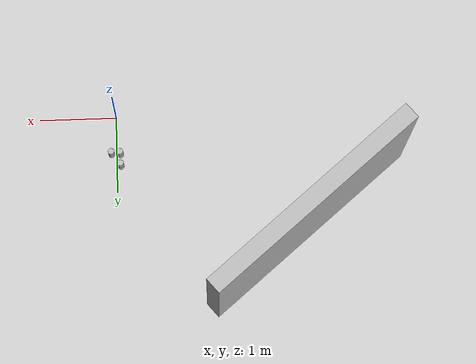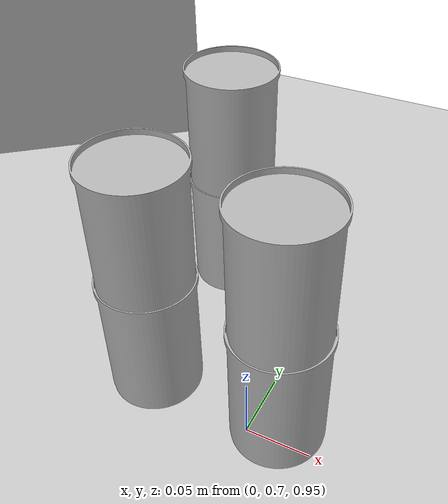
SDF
<sdf version="1.6">
 <world name="default">
  <model name="ground_plane">
   <static>1</static>
   <link name="link">
    <collision name="collision">
     <geometry><plane><normal>0 0 1</normal><size>100 100</size></plane></geometry>
     <surface>
      <contact><collide_bitmask>65535</collide_bitmask></contact>
      <friction><ode><mu>100</mu><mu2>50</mu2></ode></friction>
     </surface>
    </collision>
    <visual name="visual">
     <cast_shadows>0</cast_shadows>
     <geometry><plane><normal>0 0 1</normal><size>100 100</size></plane></geometry>
     <material>
      <script><uri>file://media/materials/scripts/gazebo.material</uri><name>Gazebo/Grey</name></script>
     </material>
    </visual>
   </link>
  </model>
  <model name="backdrop">
   <link name="link_0">
    <inertial>
     <mass>1</mass>
     <inertia>
      <ixx>0.166667</ixx>
      <ixy>0</ixy>
      <ixz>0</ixz>
      <iyy>0.166667</iyy>
      <iyz>0</iyz>
      <izz>0.166667</izz>
     </inertia>
    </inertial>
    <visual name="visual">
     <geometry><mesh><uri>model://backdrop/backdrop.dae</uri><scale>1 1 1</scale></mesh></geometry>
    </visual>
    <collision name="collision">
     <geometry><mesh><uri>model://backdrop/backdrop.dae</uri><scale>1 1 1</scale></mesh></geometry>
     <surface>
      <friction>
       <ode><mu>1</mu><mu2>1</mu2><fdir1>0 0 0</fdir1><slip1>0</slip1><slip2>0</slip2></ode>
       <torsional>
        <coefficient>1</coefficient>
        <patch_radius>0</patch_radius>
        <surface_radius>0</surface_radius>
        <use_patch_radius>1</use_patch_radius>
        <ode><slip>0</slip></ode>
       </torsional>
      </friction>
      <bounce><restitution_coefficient>0</restitution_coefficient><threshold>1e+06</threshold></bounce>
      <contact>
       <collide_without_contact>0</collide_without_contact>
       <collide_without_contact_bitmask>1</collide_without_contact_bitmask>
       <collide_bitmask>1</collide_bitmask>
       <ode>
        <soft_cfm>0</soft_cfm>
        <soft_erp>0.2</soft_erp>
        <kp>1e+13</kp>
        <kd>1</kd>
        <max_vel>0.01</max_vel>
        <min_depth>0</min_depth>
       </ode>
       <bullet>
        <split_impulse>1</split_impulse>
        <split_impulse_penetration_threshold>-0.01</split_impulse_penetration_threshold>
        <soft_cfm>0</soft_cfm>
        <soft_erp>0.2</soft_erp>
        <kp>1e+13</kp>
        <kd>1</kd>
       </bullet>
      </contact>
     </surface>
    </collision>
   </link>
   <static>1</static>
   <pose>-2.39705 1.57 1.0086 -1.57 0.002182 0.695389</pose>
  </model>
  <model name="can_shelf_1_1_0">
   <link name="link_0">
    <inertial>
     <mass>0.4</mass>
     <inertia>
      <ixx>0.000936</ixx>
      <ixy>0</ixy>
      <ixz>0</ixz>
      <iyy>0.000936</iyy>
      <iyz>0</iyz>
      <izz>0.001066</izz>
     </inertia>
    </inertial>
    <visual name="visual">
     <geometry><mesh><uri>model://standard_can_fit/standard_can_fit.dae</uri><scale>1 1 1</scale></mesh></geometry>
    </visual>
    <collision name="collision">
     <geometry><mesh><uri>model://standard_can_fit/standard_can_fit.dae</uri><scale>1 1 1</scale></mesh></geometry>
     <surface>
      <friction>
       <ode><mu>1</mu><mu2>1</mu2><fdir1>0 0 0</fdir1><slip1>0</slip1><slip2>0</slip2></ode>
       <torsional>
        <coefficient>1</coefficient>
        <patch_radius>0</patch_radius>
        <surface_radius>0</surface_radius>
        <use_patch_radius>1</use_patch_radius>
        <ode><slip>0</slip></ode>
       </torsional>
      </friction>
      <bounce><restitution_coefficient>0</restitution_coefficient><threshold>1e+06</threshold></bounce>
      <contact>
       <collide_without_contact>0</collide_without_contact>
       <collide_without_contact_bitmask>1</collide_without_contact_bitmask>
       <collide_bitmask>1</collide_bitmask>
       <ode>
        <soft_cfm>0</soft_cfm>
        <soft_erp>0.2</soft_erp>
        <kp>1e+13</kp>
        <kd>1</kd>
        <max_vel>0.01</max_vel>
        <min_depth>0.01</min_depth>
       </ode>
       <bullet>
        <split_impulse>1</split_impulse>
        <split_impulse_penetration_threshold>-0.01</split_impulse_penetration_threshold>
        <soft_cfm>0</soft_cfm>
        <soft_erp>0.2</soft_erp>
        <kp>1e+13</kp>
        <kd>1</kd>
       </bullet>
      </contact>
     </surface>
    </collision>
   </link>
   <static>1</static>
   <pose>-0.101368 0.876103 0.987723 1e-06 -3.4e-05 1.59816</pose>
  </model>
  <model name="can_shelf_1_1_1">
   <link name="link_0">
    <inertial>
     <mass>0.4</mass>
     <inertia>
      <ixx>0.000936</ixx>
      <ixy>0</ixy>
      <ixz>0</ixz>
      <iyy>0.000936</iyy>
      <iyz>0</iyz>
      <izz>0.001066</izz>
     </inertia>
    </inertial>
    <visual name="visual">
     <geometry><mesh><uri>model://standard_can_fit/standard_can_fit.dae</uri><scale>1 1 1</scale></mesh></geometry>
    </visual>
    <collision name="collision">
     <geometry><mesh><uri>model://standard_can_fit/standard_can_fit.dae</uri><scale>1 1 1</scale></mesh></geometry>
     <surface>
      <friction>
       <ode><mu>1</mu><mu2>1</mu2><fdir1>0 0 0</fdir1><slip1>0</slip1><slip2>0</slip2></ode>
       <torsional>
        <coefficient>1</coefficient>
        <patch_radius>0</patch_radius>
        <surface_radius>0</surface_radius>
        <use_patch_radius>1</use_patch_radius>
        <ode><slip>0</slip></ode>
       </torsional>
      </friction>
      <bounce><restitution_coefficient>0</restitution_coefficient><threshold>1e+06</threshold></bounce>
      <contact>
       <collide_without_contact>0</collide_without_contact>
       <collide_without_contact_bitmask>1</collide_without_contact_bitmask>
       <collide_bitmask>1</collide_bitmask>
       <ode>
        <soft_cfm>0</soft_cfm>
        <soft_erp>0.2</soft_erp>
        <kp>1e+13</kp>
        <kd>1</kd>
        <max_vel>0.01</max_vel>
        <min_depth>0.01</min_depth>
       </ode>
       <bullet>
        <split_impulse>1</split_impulse>
        <split_impulse_penetration_threshold>-0.01</split_impulse_penetration_threshold>
        <soft_cfm>0</soft_cfm>
        <soft_erp>0.2</soft_erp>
        <kp>1e+13</kp>
        <kd>1</kd>
       </bullet>
      </contact>
     </surface>
    </collision>
   </link>
   <static>1</static>
   <pose>-0.10041 0.875394 1.08961 0.02225 -0.019497 1.60451</pose>
  </model>
  <model name="can_shelf_2_1_1">
   <link name="link_0">
    <inertial>
     <mass>0.4</mass>
     <inertia>
      <ixx>0.000936</ixx>
      <ixy>0</ixy>
      <ixz>0</ixz>
      <iyy>0.000936</iyy>
      <iyz>0</iyz>
      <izz>0.001066</izz>
     </inertia>
    </inertial>
    <visual name="visual">
     <geometry><mesh><uri>model://standard_can_fit/standard_can_fit.dae</uri><scale>1 1 1</scale></mesh></geometry>
    </visual>
    <collision name="collision">
     <geometry><mesh><uri>model://standard_can_fit/standard_can_fit.dae</uri><scale>1 1 1</scale></mesh></geometry>
     <surface>
      <friction>
       <ode><mu>1</mu><mu2>1</mu2><fdir1>0 0 0</fdir1><slip1>0</slip1><slip2>0</slip2></ode>
       <torsional>
        <coefficient>1</coefficient>
        <patch_radius>0</patch_radius>
        <surface_radius>0</surface_radius>
        <use_patch_radius>1</use_patch_radius>
        <ode><slip>0</slip></ode>
       </torsional>
      </friction>
      <bounce><restitution_coefficient>0</restitution_coefficient><threshold>1e+06</threshold></bounce>
      <contact>
       <collide_without_contact>0</collide_without_contact>
       <collide_without_contact_bitmask>1</collide_without_contact_bitmask>
       <collide_bitmask>1</collide_bitmask>
       <ode>
        <soft_cfm>0</soft_cfm>
        <soft_erp>0.2</soft_erp>
        <kp>1e+13</kp>
        <kd>1</kd>
        <max_vel>0.01</max_vel>
        <min_depth>0.01</min_depth>
       </ode>
       <bullet>
        <split_impulse>1</split_impulse>
        <split_impulse_penetration_threshold>-0.01</split_impulse_penetration_threshold>
        <soft_cfm>0</soft_cfm>
        <soft_erp>0.2</soft_erp>
        <kp>1e+13</kp>
        <kd>1</kd>
       </bullet>
      </contact>
     </surface>
    </collision>
   </link>
   <static>1</static>
   <pose>-0.095168 0.727808 1.08862 0.023746 -0.017644 1.52399</pose>
  </model>
  <model name="can_shelf_2_1_0">
   <link name="link_0">
    <inertial>
     <mass>0.4</mass>
     <inertia>
      <ixx>0.000936</ixx>
      <ixy>0</ixy>
      <ixz>0</ixz>
      <iyy>0.000936</iyy>
      <iyz>0</iyz>
      <izz>0.001066</izz>
     </inertia>
    </inertial>
    <visual name="visual">
     <geometry><mesh><uri>model://standard_can_fit/standard_can_fit.dae</uri><scale>1 1 1</scale></mesh></geometry>
    </visual>
    <collision name="collision">
     <geometry><mesh><uri>model://standard_can_fit/standard_can_fit.dae</uri><scale>1 1 1</scale></mesh></geometry>
     <surface>
      <friction>
       <ode><mu>1</mu><mu2>1</mu2><fdir1>0 0 0</fdir1><slip1>0</slip1><slip2>0</slip2></ode>
       <torsional>
        <coefficient>1</coefficient>
        <patch_radius>0</patch_radius>
        <surface_radius>0</surface_radius>
        <use_patch_radius>1</use_patch_radius>
        <ode><slip>0</slip></ode>
       </torsional>
      </friction>
      <bounce><restitution_coefficient>0</restitution_coefficient><threshold>1e+06</threshold></bounce>
      <contact>
       <collide_without_contact>0</collide_without_contact>
       <collide_without_contact_bitmask>1</collide_without_contact_bitmask>
       <collide_bitmask>1</collide_bitmask>
       <ode>
        <soft_cfm>0</soft_cfm>
        <soft_erp>0.2</soft_erp>
        <kp>1e+13</kp>
        <kd>1</kd>
        <max_vel>0.01</max_vel>
        <min_depth>0.01</min_depth>
       </ode>
       <bullet>
        <split_impulse>1</split_impulse>
        <split_impulse_penetration_threshold>-0.01</split_impulse_penetration_threshold>
        <soft_cfm>0</soft_cfm>
        <soft_erp>0.2</soft_erp>
        <kp>1e+13</kp>
        <kd>1</kd>
       </bullet>
      </contact>
     </surface>
    </collision>
   </link>
   <static>1</static>
   <pose>-0.095865 0.727891 0.987721 2e-06 -3.3e-05 1.56427</pose>
  </model>
  <model name="can_shelf_2_2_1">
   <link name="link_0">
    <inertial>
     <mass>0.4</mass>
     <inertia>
      <ixx>0.000936</ixx>
      <ixy>0</ixy>
      <ixz>0</ixz>
      <iyy>0.000936</iyy>
      <iyz>0</iyz>
      <izz>0.001066</izz>
     </inertia>
    </inertial>
    <visual name="visual">
     <geometry><mesh><uri>model://standard_can_fit/standard_can_fit.dae</uri><scale>1 1 1</scale></mesh></geometry>
    </visual>
    <collision name="collision">
     <geometry><mesh><uri>model://standard_can_fit/standard_can_fit.dae</uri><scale>1 1 1</scale></mesh></geometry>
     <surface>
      <friction>
       <ode><mu>1</mu><mu2>1</mu2><fdir1>0 0 0</fdir1><slip1>0</slip1><slip2>0</slip2></ode>
       <torsional>
        <coefficient>1</coefficient>
        <patch_radius>0</patch_radius>
        <surface_radius>0</surface_radius>
        <use_patch_radius>1</use_patch_radius>
        <ode><slip>0</slip></ode>
       </torsional>
      </friction>
      <bounce><restitution_coefficient>0</restitution_coefficient><threshold>1e+06</threshold></bounce>
      <contact>
       <collide_without_contact>0</collide_without_contact>
       <collide_without_contact_bitmask>1</collide_without_contact_bitmask>
       <collide_bitmask>1</collide_bitmask>
       <ode>
        <soft_cfm>0</soft_cfm>
        <soft_erp>0.2</soft_erp>
        <kp>1e+13</kp>
        <kd>1</kd>
        <max_vel>0.01</max_vel>
        <min_depth>0.01</min_depth>
       </ode>
       <bullet>
        <split_impulse>1</split_impulse>
        <split_impulse_penetration_threshold>-0.01</split_impulse_penetration_threshold>
        <soft_cfm>0</soft_cfm>
        <soft_erp>0.2</soft_erp>
        <kp>1e+13</kp>
        <kd>1</kd>
       </bullet>
      </contact>
     </surface>
    </collision>
   </link>
   <static>1</static>
   <pose>0.013768 0.725489 1.09011 0.000618 -0.000181 1.52314</pose>
  </model>
  <model name="can_shelf_2_2_0">
   <link name="link_0">
    <inertial>
     <mass>0.4</mass>
     <inertia>
      <ixx>0.000936</ixx>
      <ixy>0</ixy>
      <ixz>0</ixz>
      <iyy>0.000936</iyy>
      <iyz>0</iyz>
      <izz>0.001066</izz>
     </inertia>
    </inertial>
    <visual name="visual">
     <geometry><mesh><uri>model://standard_can_fit/standard_can_fit.dae</uri><scale>1 1 1</scale></mesh></geometry>
    </visual>
    <collision name="collision">
     <geometry><mesh><uri>model://standard_can_fit/standard_can_fit.dae</uri><scale>1 1 1</scale></mesh></geometry>
     <surface>
      <friction>
       <ode><mu>1</mu><mu2>1</mu2><fdir1>0 0 0</fdir1><slip1>0</slip1><slip2>0</slip2></ode>
       <torsional>
        <coefficient>1</coefficient>
        <patch_radius>0</patch_radius>
        <surface_radius>0</surface_radius>
        <use_patch_radius>1</use_patch_radius>
        <ode><slip>0</slip></ode>
       </torsional>
      </friction>
      <bounce><restitution_coefficient>0</restitution_coefficient><threshold>1e+06</threshold></bounce>
      <contact>
       <collide_without_contact>0</collide_without_contact>
       <collide_without_contact_bitmask>1</collide_without_contact_bitmask>
       <collide_bitmask>1</collide_bitmask>
       <ode>
        <soft_cfm>0</soft_cfm>
        <soft_erp>0.2</soft_erp>
        <kp>1e+13</kp>
        <kd>1</kd>
        <max_vel>0.01</max_vel>
        <min_depth>0.01</min_depth>
       </ode>
       <bullet>
        <split_impulse>1</split_impulse>
        <split_impulse_penetration_threshold>-0.01</split_impulse_penetration_threshold>
        <soft_cfm>0</soft_cfm>
        <soft_erp>0.2</soft_erp>
        <kp>1e+13</kp>
        <kd>1</kd>
       </bullet>
      </contact>
     </surface>
    </collision>
   </link>
   <static>1</static>
   <pose>0.014681 0.72334 0.987684 0.000618 -0.000181 1.52314</pose>
  </model>
 </world>
</sdf>
